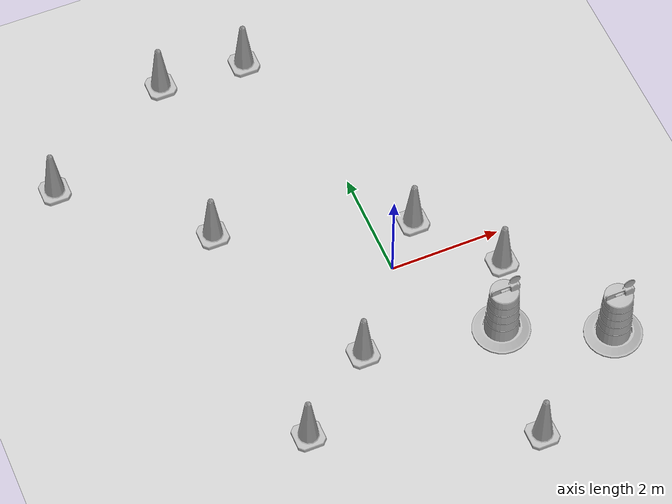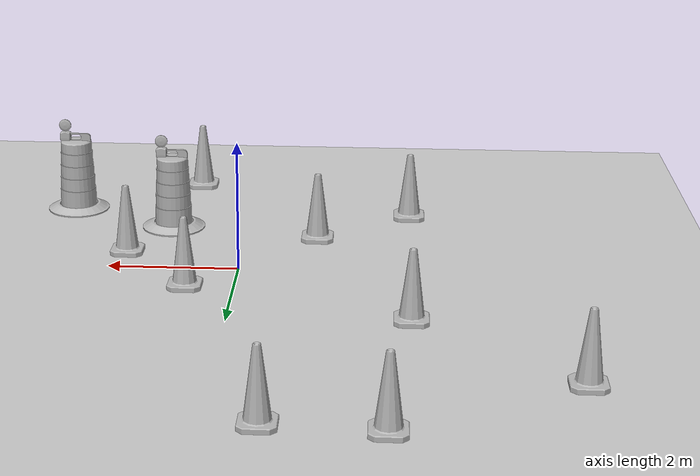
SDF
<sdf version="1.7">
 <world name="default">
  <light name="sun" type="directional">
   <pose>0 0 10 0 -0 0</pose>
   <diffuse>0.8 0.8 0.8 1</diffuse>
   <specular>0.2 0.2 0.2 1</specular>
   <attenuation>
    <range>1000</range>
    <constant>0.9</constant>
    <linear>0.01</linear>
    <quadratic>0.001</quadratic>
   </attenuation>
   <direction>-0.5 0.1 -0.9</direction>
   <spot><inner_angle>0</inner_angle><outer_angle>0</outer_angle><falloff>0</falloff></spot>
  </light>
  <model name="ground_plane">
   <static>1</static>
   <link name="link">
    <collision name="collision">
     <geometry><plane><normal>0 0 1</normal><size>100 100</size></plane></geometry>
     <surface><friction><ode><mu>100</mu><mu2>50</mu2></ode></friction></surface>
    </collision>
    <visual name="visual">
     <cast_shadows>0</cast_shadows>
     <geometry><plane><normal>0 0 1</normal><size>100 100</size></plane></geometry>
     <material>
      <script><uri>file://media/materials/scripts/gazebo.material</uri><name>Gazebo/Grey</name></script>
     </material>
    </visual>
   </link>
  </model>
  <gravity>0 0 -9.8</gravity>
  <magnetic_field>6e-06 2.3e-05 -4.2e-05</magnetic_field>
  <atmosphere type="adiabatic"/>
  <physics type="ode">
   <max_step_size>0.001</max_step_size>
   <real_time_factor>1</real_time_factor>
   <real_time_update_rate>1000</real_time_update_rate>
  </physics>
  <scene><ambient>0.4 0.4 0.4 1</ambient><background>0.7 0.7 0.7 1</background><shadows>1</shadows></scene>
  <audio><device>default</device></audio>
  <spherical_coordinates>
   <surface_model>EARTH_WGS84</surface_model>
   <latitude_deg>0</latitude_deg>
   <longitude_deg>0</longitude_deg>
   <elevation>0</elevation>
   <heading_deg>0</heading_deg>
  </spherical_coordinates>
  <model name="Construction Barrel">
   <link name="link">
    <inertial>
     <pose>0 0 0.4 0 -0 0</pose>
     <mass>500</mass>
     <inertia><ixx>51.2096</ixx><iyy>51.2096</iyy><izz>25</izz><ixy>0</ixy><ixz>0</ixz><iyz>0</iyz></inertia>
    </inertial>
    <collision name="collision">
     <geometry><mesh><uri>model://construction_barrel/meshes/construction_barrel.dae</uri></mesh></geometry>
    </collision>
    <visual name="visual">
     <geometry><mesh><uri>model://construction_barrel/meshes/construction_barrel.dae</uri></mesh></geometry>
    </visual>
   </link>
   <pose>1.23233 -1.84085 -1e-06 3e-06 -2e-06 -2e-05</pose>
  </model>
  <model name="Construction Cone">
   <link name="link">
    <collision name="collision">
     <geometry>
      <mesh><scale>10 10 10</scale><uri>model://construction_cone/meshes/construction_cone.dae</uri></mesh>
     </geometry>
    </collision>
    <visual name="visual">
     <geometry>
      <mesh><scale>10 10 10</scale><uri>model://construction_cone/meshes/construction_cone.dae</uri></mesh>
     </geometry>
    </visual>
    <inertial>
     <inertia><ixx>1</ixx><ixy>0</ixy><ixz>0</ixz><iyy>1</iyy><iyz>0</iyz><izz>1</izz></inertia>
     <mass>1</mass>
    </inertial>
   </link>
   <pose>-1.14443 -1.39972 -0 0 -0 0</pose>
  </model>
  <model name="Construction Cone_0">
   <link name="link">
    <collision name="collision">
     <geometry>
      <mesh><scale>10 10 10</scale><uri>model://construction_cone/meshes/construction_cone.dae</uri></mesh>
     </geometry>
    </collision>
    <visual name="visual">
     <geometry>
      <mesh><scale>10 10 10</scale><uri>model://construction_cone/meshes/construction_cone.dae</uri></mesh>
     </geometry>
    </visual>
    <inertial>
     <inertia><ixx>1</ixx><ixy>0</ixy><ixz>0</ixz><iyy>1</iyy><iyz>0</iyz><izz>1</izz></inertia>
     <mass>1</mass>
    </inertial>
   </link>
   <pose>0.725041 0.746261 -0 0 -0 0</pose>
  </model>
  <model name="Construction Cone_1">
   <link name="link">
    <collision name="collision">
     <geometry>
      <mesh><scale>10 10 10</scale><uri>model://construction_cone/meshes/construction_cone.dae</uri></mesh>
     </geometry>
    </collision>
    <visual name="visual">
     <geometry>
      <mesh><scale>10 10 10</scale><uri>model://construction_cone/meshes/construction_cone.dae</uri></mesh>
     </geometry>
    </visual>
    <inertial>
     <inertia><ixx>1</ixx><ixy>0</ixy><ixz>0</ixz><iyy>1</iyy><iyz>0</iyz><izz>1</izz></inertia>
     <mass>1</mass>
    </inertial>
   </link>
   <pose>-2.30976 5.23627 -0 0 -0 0</pose>
  </model>
  <model name="Construction Cone_2">
   <link name="link">
    <collision name="collision">
     <geometry>
      <mesh><scale>10 10 10</scale><uri>model://construction_cone/meshes/construction_cone.dae</uri></mesh>
     </geometry>
    </collision>
    <visual name="visual">
     <geometry>
      <mesh><scale>10 10 10</scale><uri>model://construction_cone/meshes/construction_cone.dae</uri></mesh>
     </geometry>
    </visual>
    <inertial>
     <inertia><ixx>1</ixx><ixy>0</ixy><ixz>0</ixz><iyy>1</iyy><iyz>0</iyz><izz>1</izz></inertia>
     <mass>1</mass>
    </inertial>
   </link>
   <pose>1.8035 -0.631079 -9e-06 -1e-06 1e-06 0</pose>
  </model>
  <model name="Construction Cone_3">
   <link name="link">
    <collision name="collision">
     <geometry>
      <mesh><scale>10 10 10</scale><uri>model://construction_cone/meshes/construction_cone.dae</uri></mesh>
     </geometry>
    </collision>
    <visual name="visual">
     <geometry>
      <mesh><scale>10 10 10</scale><uri>model://construction_cone/meshes/construction_cone.dae</uri></mesh>
     </geometry>
    </visual>
    <inertial>
     <inertia><ixx>1</ixx><ixy>0</ixy><ixz>0</ixz><iyy>1</iyy><iyz>0</iyz><izz>1</izz></inertia>
     <mass>1</mass>
    </inertial>
   </link>
   <pose>-4.85525 3.79713 -0 0 -1e-06 0</pose>
  </model>
  <model name="Construction Barrel_0">
   <link name="link">
    <inertial>
     <pose>0 0 0.4 0 -0 0</pose>
     <mass>500</mass>
     <inertia><ixx>51.2096</ixx><iyy>51.2096</iyy><izz>25</izz><ixy>0</ixy><ixz>0</ixz><iyz>0</iyz></inertia>
    </inertial>
    <collision name="collision">
     <geometry><mesh><uri>model://construction_barrel/meshes/construction_barrel.dae</uri></mesh></geometry>
    </collision>
    <visual name="visual">
     <geometry><mesh><uri>model://construction_barrel/meshes/construction_barrel.dae</uri></mesh></geometry>
    </visual>
   </link>
   <pose>2.95849 -2.65499 -1e-06 1e-06 -9e-06 -1e-05</pose>
  </model>
  <model name="Construction Cone_4">
   <link name="link">
    <collision name="collision">
     <geometry>
      <mesh><scale>10 10 10</scale><uri>model://construction_cone/meshes/construction_cone.dae</uri></mesh>
     </geometry>
    </collision>
    <visual name="visual">
     <geometry>
      <mesh><scale>10 10 10</scale><uri>model://construction_cone/meshes/construction_cone.dae</uri></mesh>
     </geometry>
    </visual>
    <inertial>
     <inertia><ixx>1</ixx><ixy>0</ixy><ixz>0</ixz><iyy>1</iyy><iyz>0</iyz><izz>1</izz></inertia>
     <mass>1</mass>
    </inertial>
   </link>
   <pose>-2.61577 1.847 -0 0 -0 0</pose>
  </model>
  <model name="Construction Cone_5">
   <link name="link">
    <collision name="collision">
     <geometry>
      <mesh><scale>10 10 10</scale><uri>model://construction_cone/meshes/construction_cone.dae</uri></mesh>
     </geometry>
    </collision>
    <visual name="visual">
     <geometry>
      <mesh><scale>10 10 10</scale><uri>model://construction_cone/meshes/construction_cone.dae</uri></mesh>
     </geometry>
    </visual>
    <inertial>
     <inertia><ixx>1</ixx><ixy>0</ixy><ixz>0</ixz><iyy>1</iyy><iyz>0</iyz><izz>1</izz></inertia>
     <mass>1</mass>
    </inertial>
   </link>
   <pose>-2.612 -2.51888 -0 0 -0 0</pose>
  </model>
  <model name="Construction Cone_6">
   <link name="link">
    <collision name="collision">
     <geometry>
      <mesh><scale>10 10 10</scale><uri>model://construction_cone/meshes/construction_cone.dae</uri></mesh>
     </geometry>
    </collision>
    <visual name="visual">
     <geometry>
      <mesh><scale>10 10 10</scale><uri>model://construction_cone/meshes/construction_cone.dae</uri></mesh>
     </geometry>
    </visual>
    <inertial>
     <inertia><ixx>1</ixx><ixy>0</ixy><ixz>0</ixz><iyy>1</iyy><iyz>0</iyz><izz>1</izz></inertia>
     <mass>1</mass>
    </inertial>
   </link>
   <pose>0.988409 -3.99694 -0 0 -0 0</pose>
  </model>
  <model name="Construction Cone_7">
   <link name="link">
    <collision name="collision">
     <geometry>
      <mesh><scale>10 10 10</scale><uri>model://construction_cone/meshes/construction_cone.dae</uri></mesh>
     </geometry>
    </collision>
    <visual name="visual">
     <geometry>
      <mesh><scale>10 10 10</scale><uri>model://construction_cone/meshes/construction_cone.dae</uri></mesh>
     </geometry>
    </visual>
    <inertial>
     <inertia><ixx>1</ixx><ixy>0</ixy><ixz>0</ixz><iyy>1</iyy><iyz>0</iyz><izz>1</izz></inertia>
     <mass>1</mass>
    </inertial>
   </link>
   <pose>-0.721733 5.14076 -0 0 -0 0</pose>
  </model>
 </world>
</sdf>
